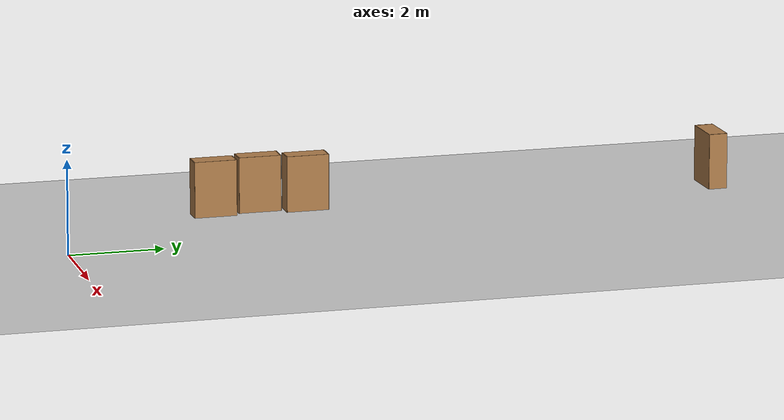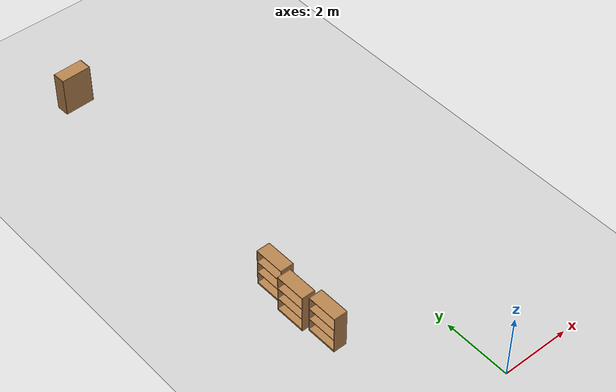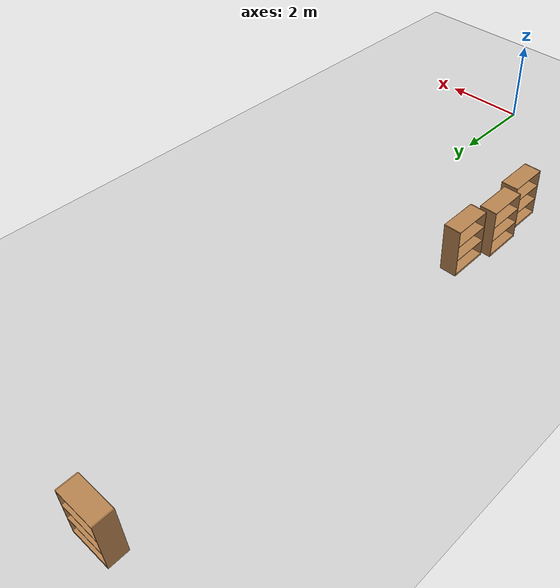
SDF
<sdf version="1.6">
 <world name="default">
  <model name="ground_plane">
   <static>1</static>
   <link name="link">
    <collision name="collision">
     <geometry><plane><normal>0 0 1</normal><size>100 100</size></plane></geometry>
     <surface>
      <contact><collide_bitmask>65535</collide_bitmask></contact>
      <friction><ode><mu>100</mu><mu2>50</mu2></ode></friction>
     </surface>
    </collision>
    <visual name="visual">
     <cast_shadows>0</cast_shadows>
     <geometry><plane><normal>0 0 1</normal><size>100 100</size></plane></geometry>
     <material>
      <script><uri>file://media/materials/scripts/gazebo.material</uri><name>Gazebo/Grey</name></script>
     </material>
    </visual>
   </link>
  </model>
  <model name="bookshelf_clone_2_clone_clone_0_clone_3_clone_0_clone_1_clone_clone">
   <static>1</static>
   <link name="link">
    <inertial><mass>1</mass></inertial>
    <collision name="back">
     <pose>0 0.005 0.6 0 -0 0</pose>
     <geometry><box><size>0.9 0.01 1.2</size></box></geometry>
    </collision>
    <visual name="visual1">
     <pose>0 0.005 0.6 0 -0 0</pose>
     <geometry><box><size>0.9 0.01 1.2</size></box></geometry>
     <material>
      <script><uri>file://media/materials/scripts/gazebo.material</uri><name>Gazebo/Wood</name></script>
     </material>
    </visual>
    <collision name="left_side">
     <pose>0.45 -0.195 0.6 0 -0 0</pose>
     <geometry><box><size>0.02 0.4 1.2</size></box></geometry>
    </collision>
    <visual name="visual2">
     <pose>0.45 -0.195 0.6 0 -0 0</pose>
     <geometry><box><size>0.02 0.4 1.2</size></box></geometry>
     <material>
      <script><uri>file://media/materials/scripts/gazebo.material</uri><name>Gazebo/Wood</name></script>
     </material>
    </visual>
    <collision name="right_side">
     <pose>-0.45 -0.195 0.6 0 -0 0</pose>
     <geometry><box><size>0.02 0.4 1.2</size></box></geometry>
    </collision>
    <visual name="visual3">
     <pose>-0.45 -0.195 0.6 0 -0 0</pose>
     <geometry><box><size>0.02 0.4 1.2</size></box></geometry>
     <material>
      <script><uri>file://media/materials/scripts/gazebo.material</uri><name>Gazebo/Wood</name></script>
     </material>
    </visual>
    <collision name="bottom">
     <pose>0 -0.195 0.03 0 -0 0</pose>
     <geometry><box><size>0.88 0.4 0.06</size></box></geometry>
    </collision>
    <visual name="visual4">
     <pose>0 -0.195 0.03 0 -0 0</pose>
     <geometry><box><size>0.88 0.4 0.06</size></box></geometry>
     <material>
      <script><uri>file://media/materials/scripts/gazebo.material</uri><name>Gazebo/Wood</name></script>
     </material>
    </visual>
    <collision name="top">
     <pose>0 -0.195 1.19 0 -0 0</pose>
     <geometry><box><size>0.88 0.4 0.02</size></box></geometry>
    </collision>
    <visual name="visual5">
     <pose>0 -0.195 1.19 0 -0 0</pose>
     <geometry><box><size>0.88 0.4 0.02</size></box></geometry>
     <material>
      <script><uri>file://media/materials/scripts/gazebo.material</uri><name>Gazebo/Wood</name></script>
     </material>
    </visual>
    <collision name="low_shelf">
     <pose>0 -0.195 0.43 0 -0 0</pose>
     <geometry><box><size>0.88 0.4 0.02</size></box></geometry>
    </collision>
    <visual name="visual6">
     <pose>0 -0.195 0.43 0 -0 0</pose>
     <geometry><box><size>0.88 0.4 0.02</size></box></geometry>
     <material>
      <script><uri>file://media/materials/scripts/gazebo.material</uri><name>Gazebo/Wood</name></script>
     </material>
    </visual>
    <collision name="high_shelf">
     <pose>0 -0.195 0.8 0 -0 0</pose>
     <geometry><box><size>0.88 0.4 0.02</size></box></geometry>
    </collision>
    <visual name="visual7">
     <pose>0 -0.195 0.8 0 -0 0</pose>
     <geometry><box><size>0.88 0.4 0.02</size></box></geometry>
     <material>
      <script><uri>file://media/materials/scripts/gazebo.material</uri><name>Gazebo/Wood</name></script>
     </material>
    </visual>
   </link>
   <pose>-2.28867 3.62452 0 0 0 -1.56003</pose>
  </model>
  <model name="bookshelf_clone_2_clone_clone_0_clone_3_clone_0_clone_1_clone_clone_0">
   <static>1</static>
   <link name="link">
    <inertial><mass>1</mass></inertial>
    <collision name="back">
     <pose>0 0.005 0.6 0 -0 0</pose>
     <geometry><box><size>0.9 0.01 1.2</size></box></geometry>
    </collision>
    <visual name="visual1">
     <pose>0 0.005 0.6 0 -0 0</pose>
     <geometry><box><size>0.9 0.01 1.2</size></box></geometry>
     <material>
      <script><uri>file://media/materials/scripts/gazebo.material</uri><name>Gazebo/Wood</name></script>
     </material>
    </visual>
    <collision name="left_side">
     <pose>0.45 -0.195 0.6 0 -0 0</pose>
     <geometry><box><size>0.02 0.4 1.2</size></box></geometry>
    </collision>
    <visual name="visual2">
     <pose>0.45 -0.195 0.6 0 -0 0</pose>
     <geometry><box><size>0.02 0.4 1.2</size></box></geometry>
     <material>
      <script><uri>file://media/materials/scripts/gazebo.material</uri><name>Gazebo/Wood</name></script>
     </material>
    </visual>
    <collision name="right_side">
     <pose>-0.45 -0.195 0.6 0 -0 0</pose>
     <geometry><box><size>0.02 0.4 1.2</size></box></geometry>
    </collision>
    <visual name="visual3">
     <pose>-0.45 -0.195 0.6 0 -0 0</pose>
     <geometry><box><size>0.02 0.4 1.2</size></box></geometry>
     <material>
      <script><uri>file://media/materials/scripts/gazebo.material</uri><name>Gazebo/Wood</name></script>
     </material>
    </visual>
    <collision name="bottom">
     <pose>0 -0.195 0.03 0 -0 0</pose>
     <geometry><box><size>0.88 0.4 0.06</size></box></geometry>
    </collision>
    <visual name="visual4">
     <pose>0 -0.195 0.03 0 -0 0</pose>
     <geometry><box><size>0.88 0.4 0.06</size></box></geometry>
     <material>
      <script><uri>file://media/materials/scripts/gazebo.material</uri><name>Gazebo/Wood</name></script>
     </material>
    </visual>
    <collision name="top">
     <pose>0 -0.195 1.19 0 -0 0</pose>
     <geometry><box><size>0.88 0.4 0.02</size></box></geometry>
    </collision>
    <visual name="visual5">
     <pose>0 -0.195 1.19 0 -0 0</pose>
     <geometry><box><size>0.88 0.4 0.02</size></box></geometry>
     <material>
      <script><uri>file://media/materials/scripts/gazebo.material</uri><name>Gazebo/Wood</name></script>
     </material>
    </visual>
    <collision name="low_shelf">
     <pose>0 -0.195 0.43 0 -0 0</pose>
     <geometry><box><size>0.88 0.4 0.02</size></box></geometry>
    </collision>
    <visual name="visual6">
     <pose>0 -0.195 0.43 0 -0 0</pose>
     <geometry><box><size>0.88 0.4 0.02</size></box></geometry>
     <material>
      <script><uri>file://media/materials/scripts/gazebo.material</uri><name>Gazebo/Wood</name></script>
     </material>
    </visual>
    <collision name="high_shelf">
     <pose>0 -0.195 0.8 0 -0 0</pose>
     <geometry><box><size>0.88 0.4 0.02</size></box></geometry>
    </collision>
    <visual name="visual7">
     <pose>0 -0.195 0.8 0 -0 0</pose>
     <geometry><box><size>0.88 0.4 0.02</size></box></geometry>
     <material>
      <script><uri>file://media/materials/scripts/gazebo.material</uri><name>Gazebo/Wood</name></script>
     </material>
    </visual>
   </link>
   <pose>-2.44046 4.61427 0 0 0 -1.56003</pose>
  </model>
  <model name="bookshelf_clone_2_clone_clone_0_clone_3_clone_0_clone_1_clone_clone_0_clone">
   <static>1</static>
   <link name="link">
    <inertial><mass>1</mass></inertial>
    <collision name="back">
     <pose>0 0.005 0.6 0 -0 0</pose>
     <geometry><box><size>0.9 0.01 1.2</size></box></geometry>
    </collision>
    <visual name="visual1">
     <pose>0 0.005 0.6 0 -0 0</pose>
     <geometry><box><size>0.9 0.01 1.2</size></box></geometry>
     <material>
      <script><uri>file://media/materials/scripts/gazebo.material</uri><name>Gazebo/Wood</name></script>
     </material>
    </visual>
    <collision name="left_side">
     <pose>0.45 -0.195 0.6 0 -0 0</pose>
     <geometry><box><size>0.02 0.4 1.2</size></box></geometry>
    </collision>
    <visual name="visual2">
     <pose>0.45 -0.195 0.6 0 -0 0</pose>
     <geometry><box><size>0.02 0.4 1.2</size></box></geometry>
     <material>
      <script><uri>file://media/materials/scripts/gazebo.material</uri><name>Gazebo/Wood</name></script>
     </material>
    </visual>
    <collision name="right_side">
     <pose>-0.45 -0.195 0.6 0 -0 0</pose>
     <geometry><box><size>0.02 0.4 1.2</size></box></geometry>
    </collision>
    <visual name="visual3">
     <pose>-0.45 -0.195 0.6 0 -0 0</pose>
     <geometry><box><size>0.02 0.4 1.2</size></box></geometry>
     <material>
      <script><uri>file://media/materials/scripts/gazebo.material</uri><name>Gazebo/Wood</name></script>
     </material>
    </visual>
    <collision name="bottom">
     <pose>0 -0.195 0.03 0 -0 0</pose>
     <geometry><box><size>0.88 0.4 0.06</size></box></geometry>
    </collision>
    <visual name="visual4">
     <pose>0 -0.195 0.03 0 -0 0</pose>
     <geometry><box><size>0.88 0.4 0.06</size></box></geometry>
     <material>
      <script><uri>file://media/materials/scripts/gazebo.material</uri><name>Gazebo/Wood</name></script>
     </material>
    </visual>
    <collision name="top">
     <pose>0 -0.195 1.19 0 -0 0</pose>
     <geometry><box><size>0.88 0.4 0.02</size></box></geometry>
    </collision>
    <visual name="visual5">
     <pose>0 -0.195 1.19 0 -0 0</pose>
     <geometry><box><size>0.88 0.4 0.02</size></box></geometry>
     <material>
      <script><uri>file://media/materials/scripts/gazebo.material</uri><name>Gazebo/Wood</name></script>
     </material>
    </visual>
    <collision name="low_shelf">
     <pose>0 -0.195 0.43 0 -0 0</pose>
     <geometry><box><size>0.88 0.4 0.02</size></box></geometry>
    </collision>
    <visual name="visual6">
     <pose>0 -0.195 0.43 0 -0 0</pose>
     <geometry><box><size>0.88 0.4 0.02</size></box></geometry>
     <material>
      <script><uri>file://media/materials/scripts/gazebo.material</uri><name>Gazebo/Wood</name></script>
     </material>
    </visual>
    <collision name="high_shelf">
     <pose>0 -0.195 0.8 0 -0 0</pose>
     <geometry><box><size>0.88 0.4 0.02</size></box></geometry>
    </collision>
    <visual name="visual7">
     <pose>0 -0.195 0.8 0 -0 0</pose>
     <geometry><box><size>0.88 0.4 0.02</size></box></geometry>
     <material>
      <script><uri>file://media/materials/scripts/gazebo.material</uri><name>Gazebo/Wood</name></script>
     </material>
    </visual>
   </link>
   <pose>-2.26708 5.60534 0 0 0 -1.56003</pose>
  </model>
  <model name="bookshelf_clone_2_clone_clone_0_clone_clone_9_clone_2">
   <static>1</static>
   <link name="link">
    <inertial><mass>1</mass></inertial>
    <collision name="back">
     <pose>0 0.005 0.6 0 -0 0</pose>
     <geometry><box><size>0.9 0.01 1.2</size></box></geometry>
    </collision>
    <visual name="visual1">
     <pose>0 0.005 0.6 0 -0 0</pose>
     <geometry><box><size>0.9 0.01 1.2</size></box></geometry>
     <material>
      <script><uri>file://media/materials/scripts/gazebo.material</uri><name>Gazebo/Wood</name></script>
     </material>
    </visual>
    <collision name="left_side">
     <pose>0.45 -0.195 0.6 0 -0 0</pose>
     <geometry><box><size>0.02 0.4 1.2</size></box></geometry>
    </collision>
    <visual name="visual2">
     <pose>0.45 -0.195 0.6 0 -0 0</pose>
     <geometry><box><size>0.02 0.4 1.2</size></box></geometry>
     <material>
      <script><uri>file://media/materials/scripts/gazebo.material</uri><name>Gazebo/Wood</name></script>
     </material>
    </visual>
    <collision name="right_side">
     <pose>-0.45 -0.195 0.6 0 -0 0</pose>
     <geometry><box><size>0.02 0.4 1.2</size></box></geometry>
    </collision>
    <visual name="visual3">
     <pose>-0.45 -0.195 0.6 0 -0 0</pose>
     <geometry><box><size>0.02 0.4 1.2</size></box></geometry>
     <material>
      <script><uri>file://media/materials/scripts/gazebo.material</uri><name>Gazebo/Wood</name></script>
     </material>
    </visual>
    <collision name="bottom">
     <pose>0 -0.195 0.03 0 -0 0</pose>
     <geometry><box><size>0.88 0.4 0.06</size></box></geometry>
    </collision>
    <visual name="visual4">
     <pose>0 -0.195 0.03 0 -0 0</pose>
     <geometry><box><size>0.88 0.4 0.06</size></box></geometry>
     <material>
      <script><uri>file://media/materials/scripts/gazebo.material</uri><name>Gazebo/Wood</name></script>
     </material>
    </visual>
    <collision name="top">
     <pose>0 -0.195 1.19 0 -0 0</pose>
     <geometry><box><size>0.88 0.4 0.02</size></box></geometry>
    </collision>
    <visual name="visual5">
     <pose>0 -0.195 1.19 0 -0 0</pose>
     <geometry><box><size>0.88 0.4 0.02</size></box></geometry>
     <material>
      <script><uri>file://media/materials/scripts/gazebo.material</uri><name>Gazebo/Wood</name></script>
     </material>
    </visual>
    <collision name="low_shelf">
     <pose>0 -0.195 0.43 0 -0 0</pose>
     <geometry><box><size>0.88 0.4 0.02</size></box></geometry>
    </collision>
    <visual name="visual6">
     <pose>0 -0.195 0.43 0 -0 0</pose>
     <geometry><box><size>0.88 0.4 0.02</size></box></geometry>
     <material>
      <script><uri>file://media/materials/scripts/gazebo.material</uri><name>Gazebo/Wood</name></script>
     </material>
    </visual>
    <collision name="high_shelf">
     <pose>0 -0.195 0.8 0 -0 0</pose>
     <geometry><box><size>0.88 0.4 0.02</size></box></geometry>
    </collision>
    <visual name="visual7">
     <pose>0 -0.195 0.8 0 -0 0</pose>
     <geometry><box><size>0.88 0.4 0.02</size></box></geometry>
     <material>
      <script><uri>file://media/materials/scripts/gazebo.material</uri><name>Gazebo/Wood</name></script>
     </material>
    </visual>
   </link>
   <pose>-2.2608 14.31 0 0 0 -3.10717</pose>
  </model>
 </world>
</sdf>
